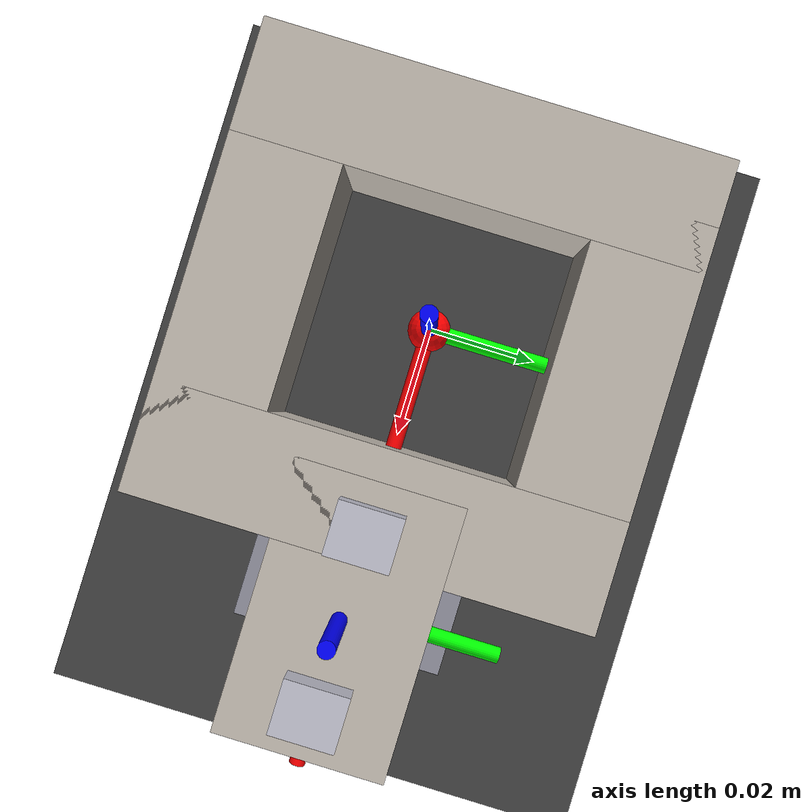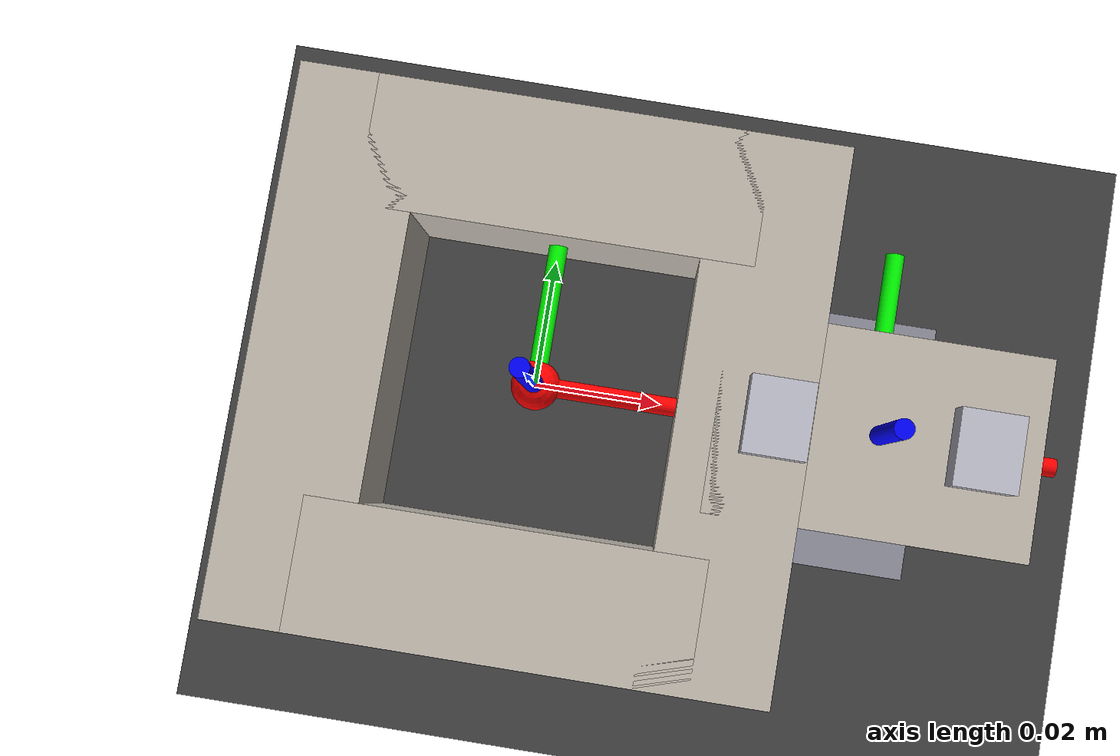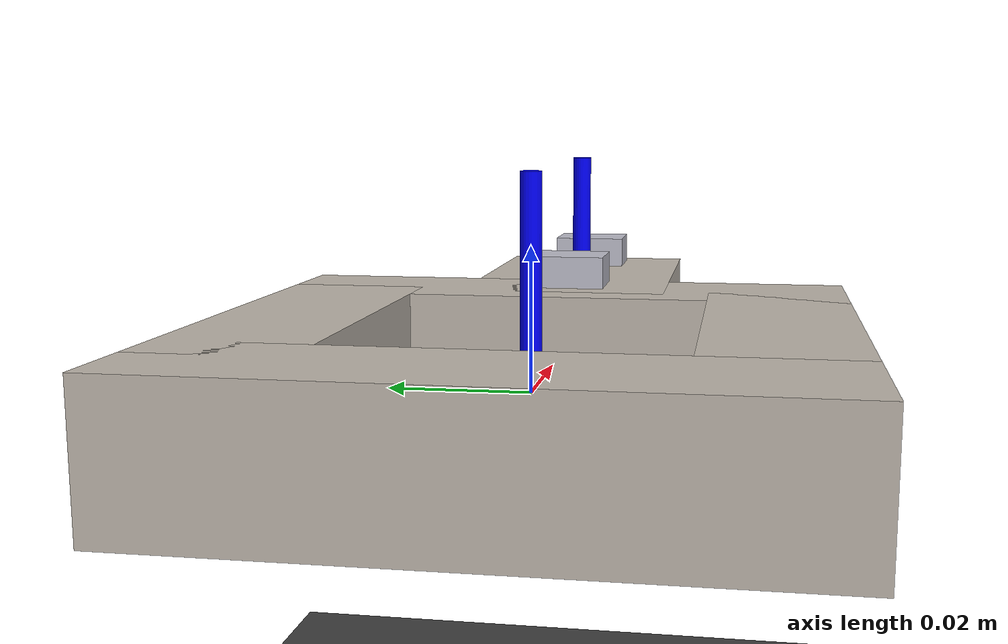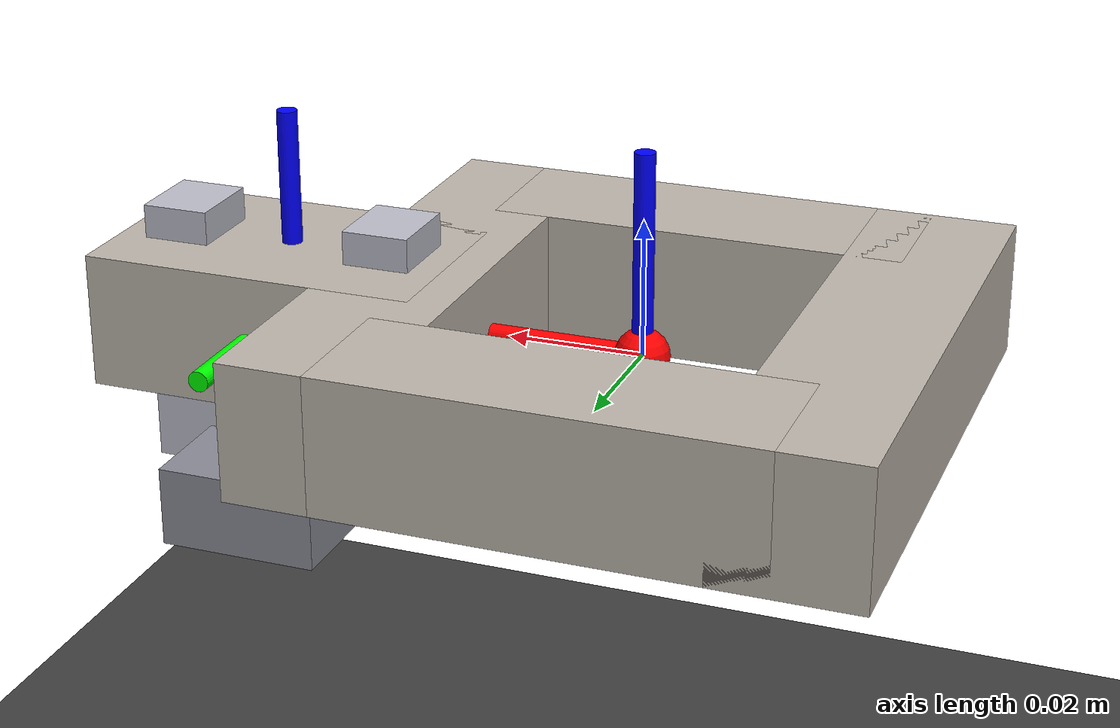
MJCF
<mujoco model="nut_grasp_visualization">

  <compiler angle="radian"/>

  <option gravity="0 0 0"/>

  <visual>
    <headlight ambient="0.4 0.4 0.4" diffuse="0.6 0.6 0.6"/>
    <global offwidth="1280" offheight="960"/>
  </visual>

  <asset>
    <texture name="brass-metal" type="cube" file="textures/brass-ambra.png"/>
    <material name="bmetal" texture="brass-metal" reflectance="0.3" shininess="0.6"
              specular="0.5" texrepeat="1 1" texuniform="true"/>
    <texture name="grid" type="2d" builtin="checker" rgb1="0.2 0.2 0.2" rgb2="0.3 0.3 0.3"
              width="300" height="300"/>
    <material name="grid_mat" texture="grid" texrepeat="4 4" reflectance="0.1"/>
  </asset>

  <worldbody>
    <light pos="0.3 0.3 0.5" dir="-0.3 -0.3 -0.5" diffuse="0.8 0.8 0.8" specular="0.2 0.2 0.2"/>
    <light pos="-0.3 -0.2 0.4" dir="0.3 0.2 -0.4" diffuse="0.4 0.4 0.4"/>

    <geom name="ground" type="plane" size="0.3 0.3 0.01" pos="0 0 -0.08" material="grid_mat"/>

    <camera name="iso_view" pos="0.18 -0.22 0.18" xyaxes="0.78 0.63 0 -0.28 0.35 0.89"/>
    <camera name="top_view" pos="0 0 0.3" xyaxes="1 0 0 0 1 0"/>

    <body name="nut" mocap="true" pos="0 0 0" quat="1 0 0 0">
      <geom name="nut_side_neg_x" pos="-0.03325 0 0" size="0.0105 0.04375 0.01" type="box"
            material="bmetal" contype="0" conaffinity="0" group="1"/>
      <geom name="nut_side_pos_y" pos="0.0 0.03325 0" size="0.03125 0.0105 0.01" type="box"
            material="bmetal" contype="0" conaffinity="0" group="1"/>
      <geom name="nut_side_neg_y" pos="0.0 -0.03325 0" size="0.03125 0.0105 0.01" type="box"
            material="bmetal" contype="0" conaffinity="0" group="1"/>
      <geom name="nut_side_pos_x" pos="0.03325 0 0" size="0.0105 0.04375 0.01" type="box"
            material="bmetal" contype="0" conaffinity="0" group="1"/>
      <geom name="nut_handle" pos="0.054 0 0" size="0.02525 0.015875 0.01" type="box"
            material="bmetal" contype="0" conaffinity="0" group="1"/>

      <site rgba="1 0 0 1" size="0.004" pos="0 0 0" name="nut_center_site"/>
      <site rgba="1 0 0 1" size="0.004" pos="0.054 0 0" name="nut_handle_site"/>

      <!-- 螺母局部坐标系坐标轴指示（红=X 绿=Y 蓝=Z），长 3cm，半径 1mm -->
      <geom type="cylinder" fromto="0 0 0  0.03 0 0" size="0.0015" rgba="1 0 0 1"
            contype="0" conaffinity="0" group="1"/>
      <geom type="cylinder" fromto="0 0 0  0 0.03 0" size="0.0015" rgba="0 1 0 1"
            contype="0" conaffinity="0" group="1"/>
      <geom type="cylinder" fromto="0 0 0  0 0 0.03" size="0.0015" rgba="0 0 1 1"
            contype="0" conaffinity="0" group="1"/>
    </body>

    <body name="grasp_frame" mocap="true" pos="0.054 0 0" quat="1 0 0 0">
      <!-- TCP 原点标记（黄色小球） -->
      <geom name="tcp_marker" type="sphere" size="0.004" rgba="1 1 0 1"
            contype="0" conaffinity="0" group="1"/>

      <!-- 手掌（沿接近方向 -Z 后退 2.5cm 处的薄板） -->
      <geom name="gripper_palm" type="box" pos="0 0 -0.025" size="0.012 0.022 0.006"
            rgba="0.55 0.55 0.6 1" contype="0" conaffinity="0" group="1"/>

      <!-- 两根手指：沿局部 X（闭合方向）分开 31.75mm 开口，沿 +Z 伸出 3cm -->
      <geom name="finger_left" type="box" pos="-0.0159 0 -0.005" size="0.005 0.006 0.02"
            rgba="0.75 0.75 0.8 1" contype="0" conaffinity="0" group="1"/>
      <geom name="finger_right" type="box" pos="0.0159 0 -0.005" size="0.005 0.006 0.02"
            rgba="0.75 0.75 0.8 1" contype="0" conaffinity="0" group="1"/>

      <!-- 抓取（TCP）局部坐标系坐标轴指示（红=X 绿=Y 蓝=Z），长 3cm -->
      <geom type="cylinder" fromto="0 0 0  0.03 0 0" size="0.0015" rgba="1 0 0 1"
            contype="0" conaffinity="0" group="1"/>
      <geom type="cylinder" fromto="0 0 0  0 0.03 0" size="0.0015" rgba="0 1 0 1"
            contype="0" conaffinity="0" group="1"/>
      <geom type="cylinder" fromto="0 0 0  0 0 0.03" size="0.0015" rgba="0 0 1 1"
            contype="0" conaffinity="0" group="1"/>

      <site rgba="1 1 0 1" size="0.003" pos="0 0 0" name="tcp_site"/>
    </body>
  </worldbody>
</mujoco>
